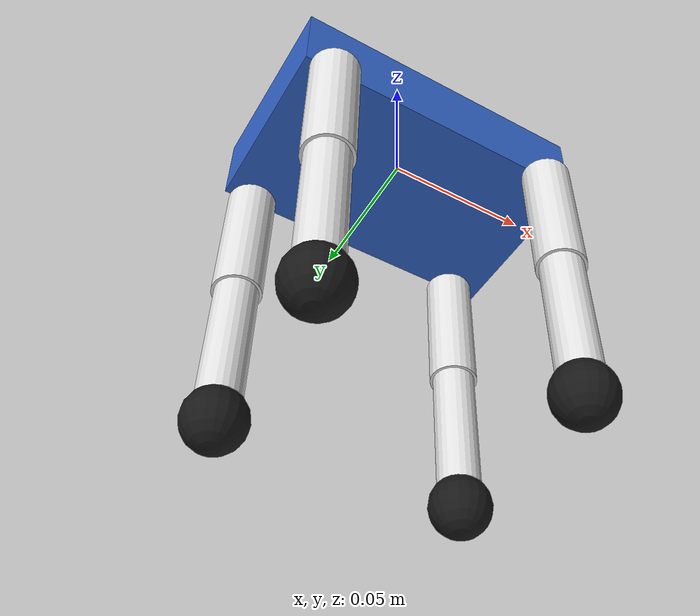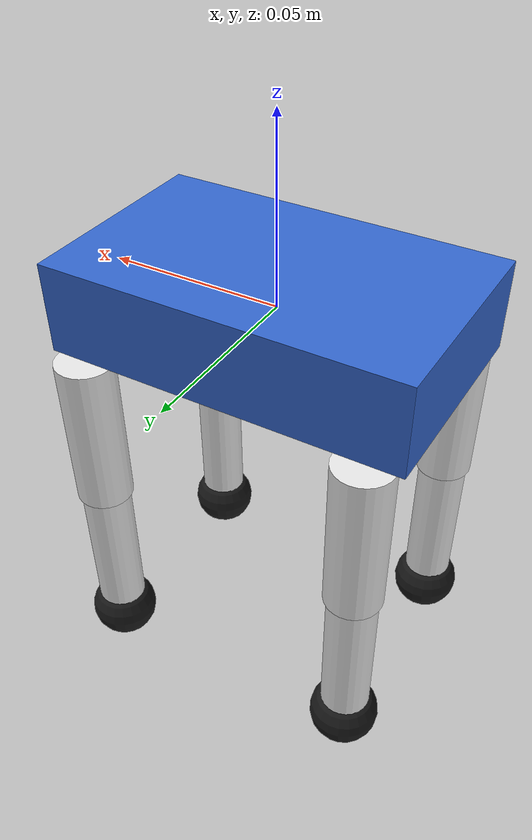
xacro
<?xml version="1.0"?>
<robot name="miniquad" xmlns:xacro="http://www.ros.org/wiki/xacro">

  <!-- ===== 基本寸法 ===== -->
  <xacro:property name="body_length" value="0.10"/>   <!-- 前後 x [m] -->
  <xacro:property name="body_width"  value="0.06"/>   <!-- 左右 y [m] -->
  <xacro:property name="body_height" value="0.025"/>  <!-- 高さ z [m] -->

  <xacro:property name="thigh_length" value="0.045"/> <!-- 大腿リンク長 [m] -->
  <xacro:property name="shank_length" value="0.050"/> <!-- 下腿リンク長 [m] -->
  <xacro:property name="thigh_radius" value="0.008"/> <!-- 大腿半径 [m] -->
  <xacro:property name="shank_radius" value="0.007"/> <!-- 下腿半径 [m] -->
  <xacro:property name="toe_radius"   value="0.010"/> <!-- 足先球半径 [m] -->

  <!-- 脚の取り付け位置 -->
  <xacro:property name="leg_x_front" value="0.040"/>   <!-- 前脚: 胴体中心から +x [m] -->
  <xacro:property name="leg_x_rear"  value="-0.040"/>  <!-- 後脚: 胴体中心から -x [m] -->
  <xacro:property name="leg_y"       value="0.030"/>   <!-- 左右オフセット (符号は脚マクロで設定) [m] -->
  <xacro:property name="hip_z"       value="${-body_height/2.0}"/>

  <!-- 関節可動域 (SG90: ±60° ≈ ±1.05 rad, 余裕をもって ±1.0 rad) -->
  <xacro:property name="hip_lower"       value="-1.0"/>  <!-- rad -->
  <xacro:property name="hip_upper"       value="1.0"/>   <!-- rad -->
  <xacro:property name="knee_lower"      value="-1.57"/> <!-- rad (-90°) -->
  <xacro:property name="knee_upper"      value="1.57"/>  <!-- rad (+90°) -->
  <xacro:property name="joint_effort"    value="0.16"/>  <!-- N·m (1.6 kg·cm) -->
  <xacro:property name="joint_velocity"  value="6.28"/>  <!-- rad/s (SG90: 0.12s/60°≈8.7 rad/s) -->

  <!-- ===== マテリアル ===== -->
  <material name="body_blue">
    <color rgba="0.20 0.40 0.80 1.0"/>
  </material>
  <material name="link_white">
    <color rgba="0.90 0.90 0.90 1.0"/>
  </material>
  <material name="toe_black">
    <color rgba="0.10 0.10 0.10 1.0"/>
  </material>

  <!-- ===== body リンク ===== -->
  <link name="body">
    <inertial>
      <mass value="0.100"/>
      <origin xyz="0 0 0" rpy="0 0 0"/>
      <inertia ixx="3.52e-5" ixy="0" ixz="0"
               iyy="8.85e-5" iyz="0"
               izz="1.13e-4"/>
    </inertial>
    <visual>
      <origin xyz="0 0 0" rpy="0 0 0"/>
      <geometry>
        <box size="${body_length} ${body_width} ${body_height}"/>
      </geometry>
      <material name="body_blue"/>
    </visual>
    <collision>
      <origin xyz="0 0 0" rpy="0 0 0"/>
      <geometry>
        <box size="${body_length} ${body_width} ${body_height}"/>
      </geometry>
    </collision>
  </link>

  <!-- ===== 汎用リンクマクロ ===== -->
  <!--
    thigh (cylinder L=0.045, r=0.008, m=0.012 kg):
      Ixx = Iyy = m(3r² + L²)/12 = 0.012×(0.000192 + 0.002025)/12 = 2.22e-6
      Izz = mr²/2 = 0.012×0.000064/2 = 3.84e-7
  -->
  <xacro:macro name="thigh_link" params="name">
    <link name="${name}">
      <inertial>
        <mass value="0.012"/>
        <origin xyz="0 0 ${-thigh_length/2.0}" rpy="0 0 0"/>
        <inertia ixx="2.22e-6" ixy="0" ixz="0"
                 iyy="2.22e-6" iyz="0"
                 izz="3.84e-7"/>
      </inertial>
      <visual>
        <origin xyz="0 0 ${-thigh_length/2.0}" rpy="0 0 0"/>
        <geometry>
          <cylinder length="${thigh_length}" radius="${thigh_radius}"/>
        </geometry>
        <material name="link_white"/>
      </visual>
      <collision>
        <origin xyz="0 0 ${-thigh_length/2.0}" rpy="0 0 0"/>
        <geometry>
          <cylinder length="${thigh_length}" radius="${thigh_radius}"/>
        </geometry>
      </collision>
    </link>
  </xacro:macro>

  <!--
    shank (cylinder L=0.050, r=0.007, m=0.003 kg):
      Ixx = Iyy = m(3r² + L²)/12 = 0.003×(0.000147 + 0.002500)/12 = 6.62e-7
      Izz = mr²/2 = 0.003×0.000049/2 = 7.35e-8
  -->
  <xacro:macro name="shank_link" params="name">
    <link name="${name}">
      <inertial>
        <mass value="0.003"/>
        <origin xyz="0 0 ${-shank_length/2.0}" rpy="0 0 0"/>
        <inertia ixx="6.62e-7" ixy="0" ixz="0"
                 iyy="6.62e-7" iyz="0"
                 izz="7.35e-8"/>
      </inertial>
      <visual>
        <origin xyz="0 0 ${-shank_length/2.0}" rpy="0 0 0"/>
        <geometry>
          <cylinder length="${shank_length}" radius="${shank_radius}"/>
        </geometry>
        <material name="link_white"/>
      </visual>
      <collision>
        <origin xyz="0 0 ${-shank_length/2.0}" rpy="0 0 0"/>
        <geometry>
          <cylinder length="${shank_length}" radius="${shank_radius}"/>
        </geometry>
      </collision>
    </link>
  </xacro:macro>

  <!--
    toe (sphere r=0.010, m=0.001 kg):
      I = 2mr²/5 = 2×0.001×0.0001/5 = 4.0e-8
  -->
  <xacro:macro name="toe_link" params="name">
    <link name="${name}">
      <inertial>
        <mass value="0.001"/>
        <origin xyz="0 0 0" rpy="0 0 0"/>
        <inertia ixx="4.0e-8" ixy="0" ixz="0"
                 iyy="4.0e-8" iyz="0"
                 izz="4.0e-8"/>
      </inertial>
      <visual>
        <origin xyz="0 0 0" rpy="0 0 0"/>
        <geometry>
          <sphere radius="${toe_radius}"/>
        </geometry>
        <material name="toe_black"/>
      </visual>
      <collision>
        <origin xyz="0 0 0" rpy="0 0 0"/>
        <geometry>
          <sphere radius="${toe_radius}"/>
        </geometry>
      </collision>
    </link>
  </xacro:macro>

  <!-- ===== 脚マクロ ===== -->
  <xacro:macro name="leg" params="prefix x y">

    <!-- body → thigh (hip 関節) -->
    <joint name="body_to_hip_${prefix}_j" type="revolute">
      <parent link="body"/>
      <child link="thigh_${prefix}"/>
      <origin xyz="${x} ${y} ${hip_z}" rpy="0 0 0"/>
      <axis xyz="0 1 0"/>
      <limit lower="${hip_lower}" upper="${hip_upper}"
             effort="${joint_effort}" velocity="${joint_velocity}"/>
      <dynamics damping="0.02" friction="0.0"/>
    </joint>

    <xacro:thigh_link name="thigh_${prefix}"/>

    <!-- thigh → shank (knee 関節) -->
    <joint name="hip_${prefix}_to_knee_${prefix}_j" type="revolute">
      <parent link="thigh_${prefix}"/>
      <child link="shank_${prefix}"/>
      <origin xyz="0 0 ${-thigh_length}" rpy="0 0 0"/>
      <axis xyz="0 1 0"/>
      <limit lower="${knee_lower}" upper="${knee_upper}"
             effort="${joint_effort}" velocity="${joint_velocity}"/>
      <dynamics damping="0.02" friction="0.0"/>
    </joint>

    <xacro:shank_link name="shank_${prefix}"/>

    <!-- shank → toe (固定関節: Genesis が shank に統合) -->
    <xacro:toe_link name="toe_${prefix}"/>
    <joint name="shank_${prefix}_to_toe_${prefix}_j" type="fixed">
      <parent link="shank_${prefix}"/>
      <child link="toe_${prefix}"/>
      <origin xyz="0 0 ${-shank_length}" rpy="0 0 0"/>
    </joint>

    <!-- Gazebo 向け足先摩擦設定 -->
    <gazebo reference="toe_${prefix}">
      <mu1>2.0</mu1>
      <mu2>2.0</mu2>
      <kp>20000.0</kp>
      <kd>500.0</kd>
    </gazebo>

  </xacro:macro>

  <!-- ===== 4脚配置 ===== -->
  <!-- 前右 (fr): +x, -y -->
  <xacro:leg prefix="fr" x="${leg_x_front}"  y="${-leg_y}"/>
  <!-- 前左 (fl): +x, +y -->
  <xacro:leg prefix="fl" x="${leg_x_front}"  y="${ leg_y}"/>
  <!-- 後右 (rr): -x, -y -->
  <xacro:leg prefix="rr" x="${leg_x_rear}"   y="${-leg_y}"/>
  <!-- 後左 (rl): -x, +y -->
  <xacro:leg prefix="rl" x="${leg_x_rear}"   y="${ leg_y}"/>

</robot>
